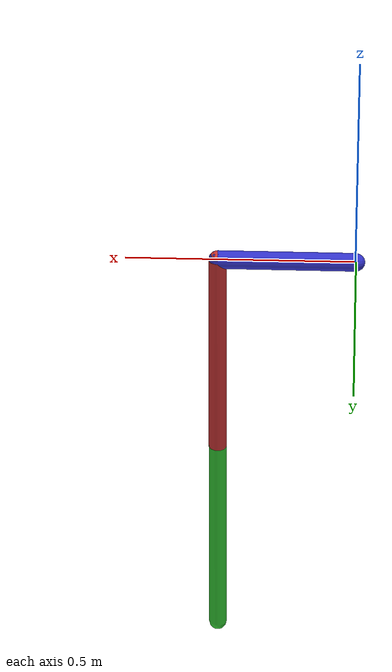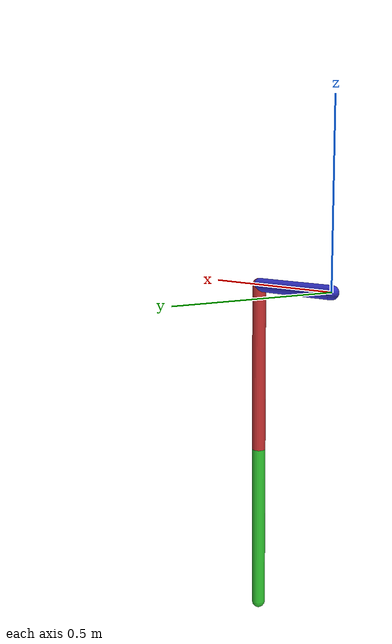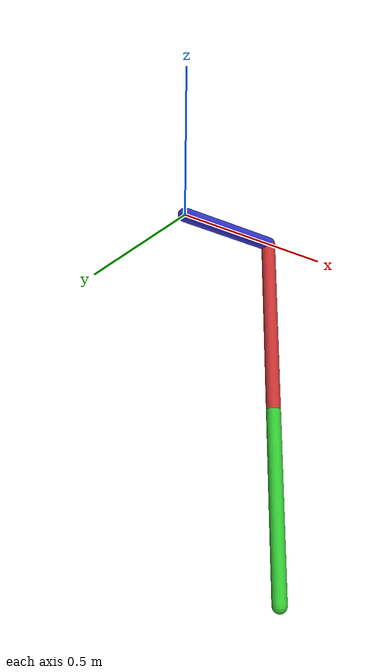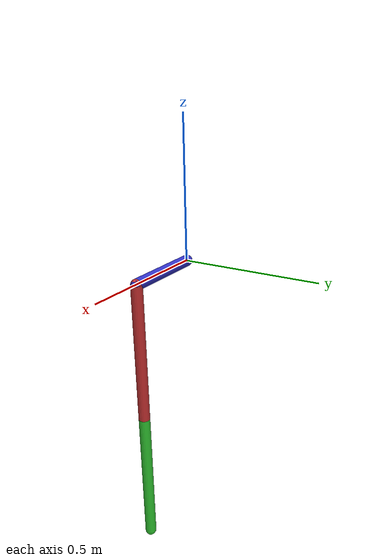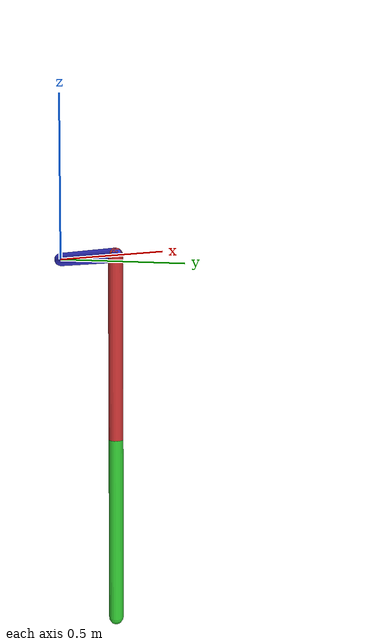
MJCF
<mujoco model="rotary_double_pendulum">
    <compiler angle="radian" coordinate="local" />
    <option gravity="0 0 -9.81" integrator="RK4" timestep="0.02" />

    <worldbody>
        <!-- 固定底座 -->
        <body name="base" pos="0 0 0">
            <!-- 绕Z轴的旋转关节 -->
            <joint name="rotary_joint" type="hinge" axis="0 0 1" pos="0 0 0" limited="false"
                damping="0.05" />

            <!-- 水平旋转臂 -->
            <body name="arm" pos="0 0 0">
                <geom name="arm_geom" type="capsule" fromto="0 0 0 0.3 0 0" size="0.02" mass="10"
                    rgba="0.2 0.2 0.8 1" />

                <!-- 垂摆1：绕X轴 -->
                <body name="pend1" pos="0.3 0 0">
                    <joint name="hinge1" type="hinge" axis="1 0 0" pos="0 0 0" limited="false"
                        damping="0.05" />
                    <geom name="pend1_geom" type="capsule" fromto="0 0 0 0 0 -0.5" size="0.02"
                        mass="10"
                        rgba="0.8 0.2 0.2 1" />

                    <!-- 垂摆2：再绕X轴 -->
                    <body name="pend2" pos="0 0 -0.5">
                        <joint name="hinge2" type="hinge" axis="1 0 0" pos="0 0 0" limited="false"
                            damping="0.05" />
                        <geom name="pend2_geom" type="capsule" fromto="0 0 0 0 0 -0.5" size="0.02"
                            mass="10"
                            rgba="0.2 0.8 0.2 1" />
                    </body>
                </body>
            </body>
        </body>
    </worldbody>

    <actuator>
        <!-- 控制第一个旋转关节 -->
        <motor name="rotary_motor" joint="rotary_joint" ctrlrange="-5 5" gear="1" />
        <motor name="hinge1_motor" joint="hinge1" ctrlrange="-5 5" gear="1" />
        <motor name="hinge2_motor" joint="hinge2" ctrlrange="-5 5" gear="1" />
    </actuator>
</mujoco>
